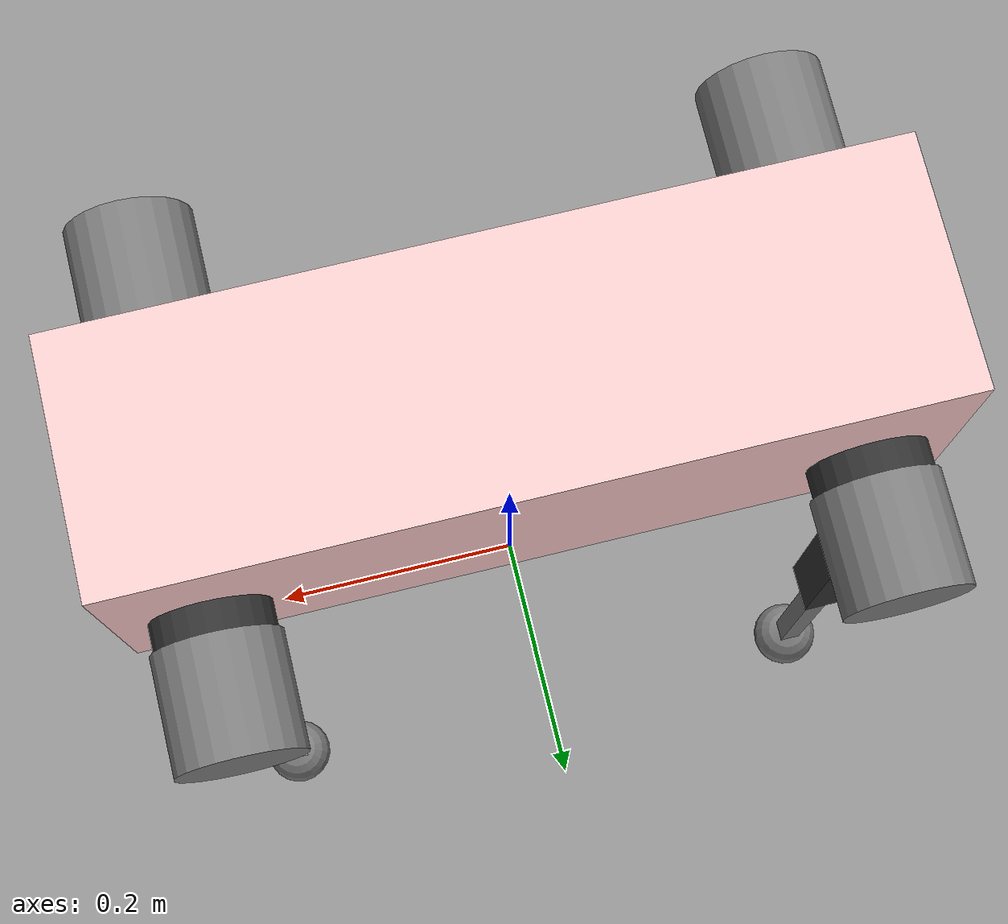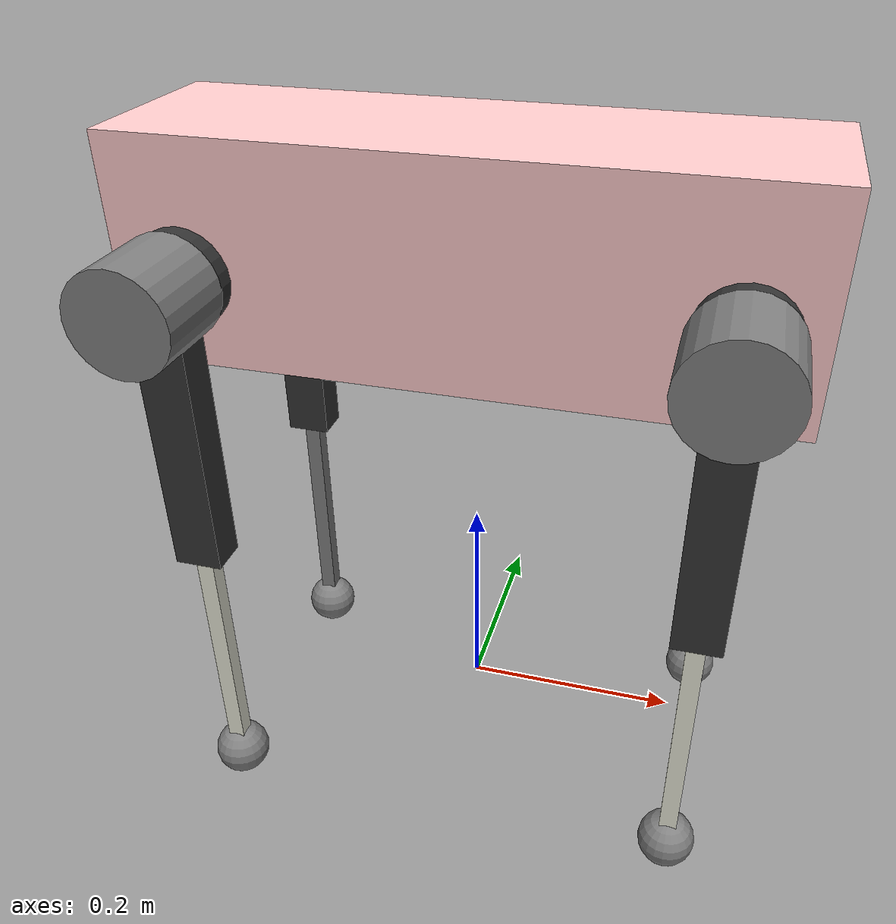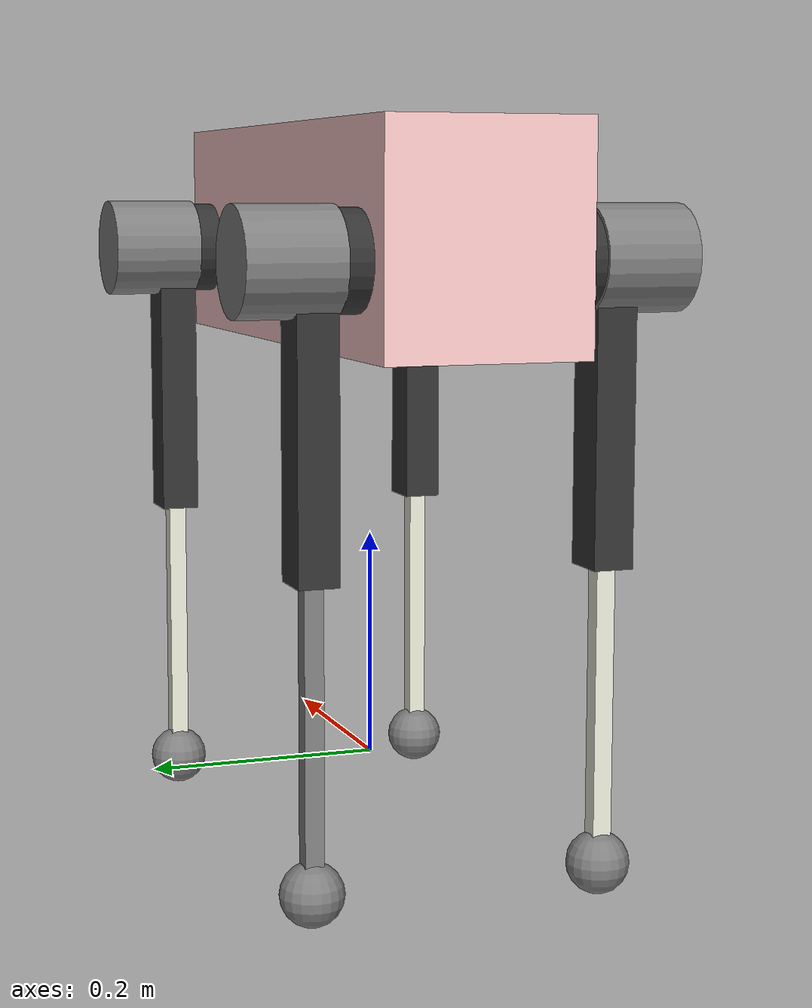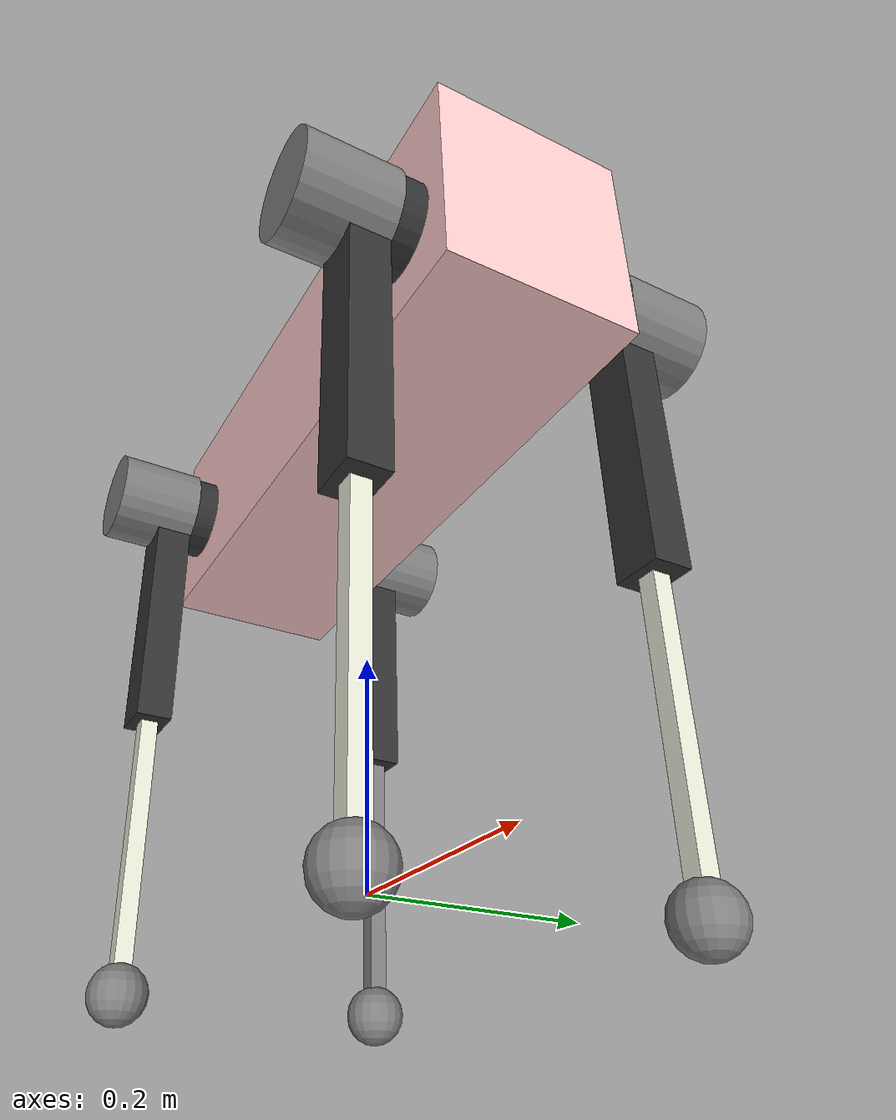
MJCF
<mujoco model="laikago_description">
    <compiler angle="radian" />
    <size njmax="500" nconmax="100" />
    <default>
        <default class="viz">
            <geom contype="0" conaffinity="0" group="1" type="mesh" />
        </default>
        <default class="coll">
            <geom group="1"/>
        </default>
        <default class="real_joint">
            <joint stiffness="3" damping="1" armature="0.1"/>
        </default>
    </default>
    <actuator>
        <motor ctrllimited="true" ctrlrange="-80.0 80.0" joint="FR_hip_joint" name="FR_hip_motor" gear="37"/>
        <motor ctrllimited="true" ctrlrange="-80.0 80.0" joint="FL_hip_joint" name="FL_hip_motor" gear="37"/>
        <motor ctrllimited="true" ctrlrange="-40.0 40.0" joint="RR_hip_joint" name="RR_hip_motor" gear="37"/>
        <motor ctrllimited="true" ctrlrange="-40.0 40.0" joint="RL_hip_joint" name="RL_hip_motor" gear="37"/>
        <motor ctrllimited="true" ctrlrange="-9.0 9.0" joint="FR_thigh_joint" name="FR_thigh_motor" gear="37"/>
        <motor ctrllimited="true" ctrlrange="-9.0 9.0" joint="FL_thigh_joint" name="FL_thigh_motor" gear="37"/>
        <motor ctrllimited="true" ctrlrange="-9.0 9.0" joint="RR_thigh_joint" name="RR_thigh_motor" gear="37"/>
        <motor ctrllimited="true" ctrlrange="-9.0 9.0" joint="RL_thigh_joint" name="RL_thigh_motor" gear="37"/>
        <motor ctrllimited="true" ctrlrange="-9.0 9.0" joint="FR_calf_joint" name="FR_calf_motor" gear="37"/>
        <motor ctrllimited="true" ctrlrange="-9.0 9.0" joint="FL_calf_joint" name="FL_calf_motor" gear="37"/>
        <motor ctrllimited="true" ctrlrange="-9.0 9.0" joint="RR_calf_joint" name="RR_calf_motor" gear="37"/>
        <motor ctrllimited="true" ctrlrange="-9.0 9.0" joint="RL_calf_joint" name="RL_calf_motor" gear="37"/>
    </actuator>

    <worldbody>
        <light diffuse=".5 .5 .5" pos="0 0 3" dir="0 0 -1"/>
        <body name="chassis" pos="0.0 0.0 0.45" quat="1.0 0.0 0.0 0.0">
            <inertial fullinertia="0.073348887 0.250684593 0.254469458 0.00030338 0.001918218 -7.5402e-05" mass="13.715" pos="0.002284 -4.1e-05 0.025165" />
            <joint name="chassis_joint" type="free" />
            <geom pos="0 0 0.01675" rgba="1 0.8 0.8 1" size="0.2808 0.086 0.09375" type="box" class="coll"/>

        <body name="FR_hip" pos="0.21935 -0.0875 0">
            <inertial pos="-0.00108591 -0.0125067 0.000598358" quat="0.341697 0.364655 -0.611962 0.613003" mass="1.58257" diaginertia="0.00290099 0.00281591 0.00145377" />

            <!-- FR_hip Oleg DBG: urdf tags effort=20 and velocity="52.4" do not have an equivalent here. Is that OK? Also damping/friction=0? -->
            <joint name="FR_hip_joint" pos="0 0 0" axis="1 0 0" limited="true" range="-1.0472 0.872665" class="real_joint" />
            <geom size="0.041 0.04" pos="0 0.021 0" quat="0.707107 0.707107 0 0" type="cylinder" rgba="0.2 0.2 0.2 1" class="coll" />

            <!-- FR_thigh_Shoulder_this link is only for collision, shoud not be visualized according to the URDF -->
            <geom size="0.044 0.04" pos="0 -0.059 0" quat="0.707107 0.707107 0 0" type="cylinder" class="coll"/>
            <body name="FR_thigh" pos="0 -0.037 0">
                <inertial pos="-0.000482 -0.02001 -0.031996" quat="0.999848 0.00577968 -0.0153453 -0.00595156" mass="1.528" diaginertia="0.00992391 0.00928096 0.00177389" />
                <joint name="FR_thigh_joint" pos="0 0 0" axis="0 1 0" limited="true" range="-0.523599 3.92699" class="real_joint" />
                <geom size="0.125 0.017 0.0215" pos="0 0 -0.125" quat="0.707107 0 0.707107 0" type="box" rgba="0.2 0.2 0.2 1" class="coll" />
                <body name="FR_calf" pos="0 0 -0.25">
                    <inertial pos="-0.00175826 -0.000305053 -0.14862" quat="0.712055 -0.000143547 -0.000911446 0.702123" mass="0.301" diaginertia="0.00698385 0.00696904 5.18431e-05" />
                    <joint name="FR_calf_joint" pos="0 0 0" axis="0 1 0" limited="true" range="-2.77507 -0.610865" class="real_joint" />
                    <geom size="0.125 0.008 0.008" pos="0 0 -0.125" quat="0.707107 0 0.707107 0" type="box" rgba="0.913725 0.913725 0.847059 1" class="coll"/>
                    <geom type="sphere" size="0.0165" pos="0 0 -0.25" class="viz"/>
                    <geom type="sphere" size="0.0265" pos="0 0 -0.25" class="coll" />
                </body>
            </body>
        </body>
        <body name="FL_hip" pos="0.21935 0.0875 0">
            <inertial pos="-0.00108591 0.0125067 0.000598358" quat="0.364655 0.341697 -0.613003 0.611962" mass="1.58257" diaginertia="0.00290099 0.00281591 0.00145377" />
            <joint name="FL_hip_joint" pos="0 0 0" axis="1 0 0" limited="true" range="-0.872665 1.0472" class="real_joint" />
            <geom size="0.041 0.04" pos="0 -0.021 0" quat="0.707107 0.707107 0 0" type="cylinder" rgba="0.2 0.2 0.2 1" class="coll" />
            <!-- FL_thigh_Shoulder_ -->
            <geom size="0.044 0.04" pos="0 0.059 0" quat="0.707107 0.707107 0 0" type="cylinder" class="coll" />
            <body name="FL_thigh" pos="0 0.037 0">
                <inertial pos="-0.000482 0.02001 -0.031996" quat="0.999848 -0.00577968 -0.0153453 0.00595156" mass="1.528" diaginertia="0.00992391 0.00928096 0.00177389" />
                <joint name="FL_thigh_joint" pos="0 0 0" axis="0 1 0" limited="true" range="-0.523599 3.92699" class="real_joint" />
                <geom size="0.125 0.017 0.0215" pos="0 0 -0.125" quat="0.707107 0 0.707107 0" type="box" rgba="0.2 0.2 0.2 1" class="coll" />
                <body name="FL_calf" pos="0 0 -0.25">
                    <inertial pos="-0.00175826 -0.000305053 -0.14862" quat="0.712055 -0.000143547 -0.000911446 0.702123" mass="0.301" diaginertia="0.00698385 0.00696904 5.18431e-05" />
                    <joint name="FL_calf_joint" pos="0 0 0" axis="0 1 0" limited="true" range="-2.77507 -0.610865" class="real_joint" />
                    <geom size="0.125 0.008 0.008" pos="0 0 -0.125" quat="0.707107 0 0.707107 0" type="box" rgba="0.913725 0.913725 0.847059 1" class="coll"/>
                    <!--FL_foot -->
                     <geom type="sphere" size="0.0165" pos="0 0 -0.25" class="viz" />
                    <geom size="0.0265" pos="0 0 -0.25" class="coll" />
                </body>
            </body>
        </body>
        <body name="RR_hip" pos="-0.21935 -0.0875 0">
            <inertial pos="0.00108591 -0.0125067 0.000598358" quat="0.613003 0.611962 -0.364655 0.341697" mass="1.58257" diaginertia="0.00290099 0.00281591 0.00145377" />
            <joint name="RR_hip_joint" pos="0 0 0" axis="1 0 0" limited="true" range="-1.0472 0.872665" class="real_joint" />
            <geom size="0.041 0.04" pos="0 0.021 0" quat="0.707107 0.707107 0 0" type="cylinder" rgba="0.2 0.2 0.2 1" class="coll"/>
            <geom size="0.044 0.04" pos="0 -0.059 0" quat="0.707107 0.707107 0 0" type="cylinder" class="coll"/>
            <body name="RR_thigh" pos="0 -0.037 0">
                <inertial pos="-0.000482 -0.02001 -0.031996" quat="0.999848 0.00577968 -0.0153453 -0.00595156" mass="1.528" diaginertia="0.00992391 0.00928096 0.00177389" />
                <joint name="RR_thigh_joint" pos="0 0 0" axis="0 1 0" limited="true" range="-0.523599 3.92699" class="real_joint" />
                <geom size="0.125 0.017 0.0215" pos="0 0 -0.125" quat="0.707107 0 0.707107 0" type="box" rgba="0.2 0.2 0.2 1" class="coll"/>
                <body name="RR_calf" pos="0 0 -0.25">
                    <inertial pos="-0.00175826 -0.000305053 -0.14862" quat="0.712055 -0.000143547 -0.000911446 0.702123" mass="0.301" diaginertia="0.00698385 0.00696904 5.18431e-05" />
                    <joint name="RR_calf_joint" pos="0 0 0" axis="0 1 0" limited="true" range="-2.77507 -0.610865" class="real_joint"/>
                    <geom size="0.125 0.008 0.008" pos="0 0 -0.125" quat="0.707107 0 0.707107 0" type="box" rgba="0.913725 0.913725 0.847059 1" class="coll"/>
                    <!--RR_foot-->
                    <geom type="sphere" size="0.0165" pos="0 0 -0.25" class="viz" />
                    <geom size="0.0265" pos="0 0 -0.25" class="coll" />
                </body>
            </body>
        </body>
        <body name="RL_hip" pos="-0.21935 0.0875 0">
            <inertial pos="0.00108591 0.0125067 0.000598358" quat="0.611962 0.613003 -0.341697 0.364655" mass="1.58257" diaginertia="0.00290099 0.00281591 0.00145377" />
            <joint name="RL_hip_joint" pos="0 0 0" axis="1 0 0" limited="true" range="-0.872665 1.0472" class="real_joint" />
            <geom size="0.041 0.04" pos="0 -0.021 0" quat="0.707107 0.707107 0 0" type="cylinder" rgba="0.2 0.2 0.2 1" class="coll" />
            <geom size="0.044 0.04" pos="0 0.059 0" quat="0.707107 0.707107 0 0" type="cylinder" class="coll"/>
            <body name="RL_thigh" pos="0 0.037 0">
                <inertial pos="-0.000482 0.02001 -0.031996" quat="0.999848 -0.00577968 -0.0153453 0.00595156" mass="1.528" diaginertia="0.00992391 0.00928096 0.00177389" />
                <joint name="RL_thigh_joint" pos="0 0 0" axis="0 1 0" limited="true" range="-0.523599 3.92699" class="real_joint" />
                <geom size="0.125 0.017 0.0215" pos="0 0 -0.125" quat="0.707107 0 0.707107 0" type="box" rgba="0.2 0.2 0.2 1" class="coll" />
                <body name="RL_calf" pos="0 0 -0.25">
                    <inertial pos="-0.00175826 -0.000305053 -0.14862" quat="0.712055 -0.000143547 -0.000911446 0.702123" mass="0.301" diaginertia="0.00698385 0.00696904 5.18431e-05" />
                    <joint name="RL_calf_joint" pos="0 0 0" axis="0 1 0" limited="true" range="-2.77507 -0.610865" class="real_joint" />
                    <geom size="0.125 0.008 0.008" pos="0 0 -0.125" quat="0.707107 0 0.707107 0" type="box" class="coll" />
                    <!-- RL_foot -->
                    <geom type="sphere" size="0.0165" pos="0 0 -0.25" class="viz"/>
                    <geom size="0.0265" pos="0 0 -0.25" class="coll"/>
                </body>
            </body>
        </body>
        </body>
    </worldbody>
</mujoco>
